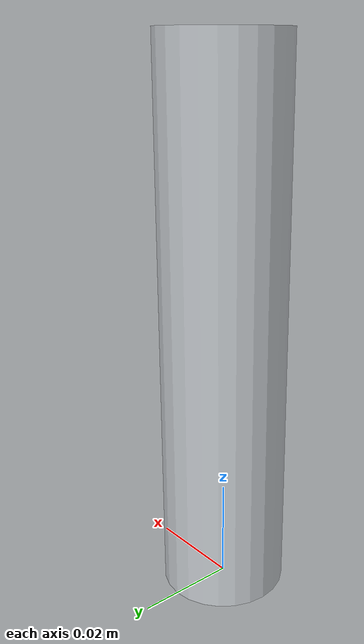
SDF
<?xml version="1.0"?>
<sdf version="1.9">
  <model name="cylindrical_peg">
    <static>false</static>
    <link name="peg_link">
      <!-- 25 mm diameter, 110 mm long aluminum-class peg for small-part insertion studies. -->
      <pose>0 0 0.055 0 0 0</pose>
      <inertial>
        <mass>0.15</mass>
        <inertia>
          <ixx>0.000157</ixx><ixy>0</ixy><ixz>0</ixz>
          <iyy>0.000157</iyy><iyz>0</iyz><izz>0.0000117</izz>
        </inertia>
      </inertial>
      <collision name="peg_collision">
        <geometry><cylinder><radius>0.0125</radius><length>0.11</length></cylinder></geometry>
        <surface>
          <friction><ode><mu>0.35</mu><mu2>0.35</mu2></ode></friction>
          <contact><ode><kp>1000000</kp><kd>10</kd></ode></contact>
        </surface>
      </collision>
      <sensor name="peg_contact_sensor" type="contact">
        <always_on>true</always_on>
        <update_rate>100.0</update_rate>
        <topic>/gazebo/contacts/peg</topic>
        <contact>
          <collision>peg_collision</collision>
        </contact>
      </sensor>
      <visual name="peg_visual">
        <geometry><cylinder><radius>0.0125</radius><length>0.11</length></cylinder></geometry>
        <material>
          <ambient>0.70 0.72 0.74 1</ambient>
          <diffuse>0.86 0.88 0.90 1</diffuse>
          <specular>0.45 0.45 0.45 1</specular>
        </material>
      </visual>
    </link>
  </model>
</sdf>
